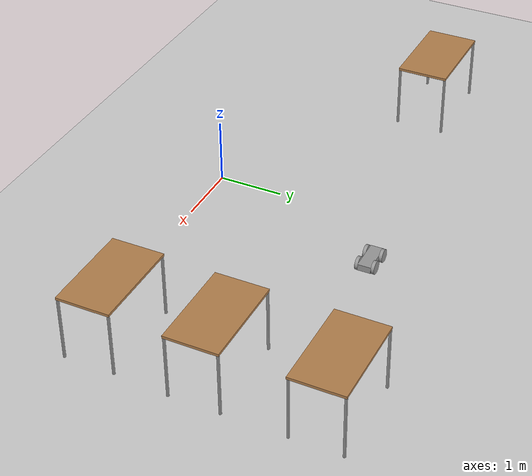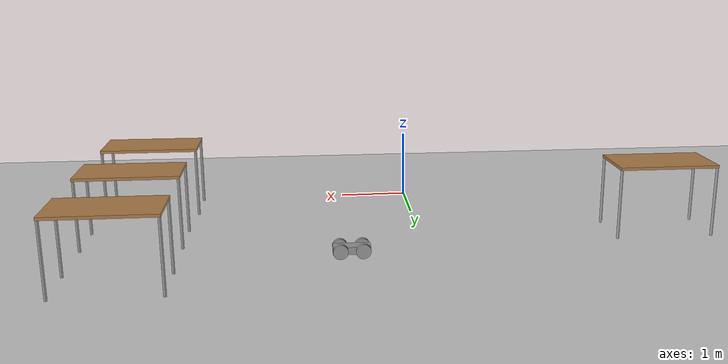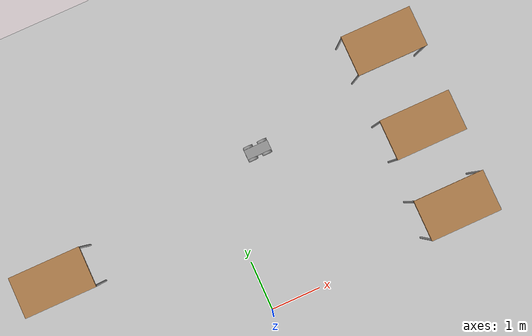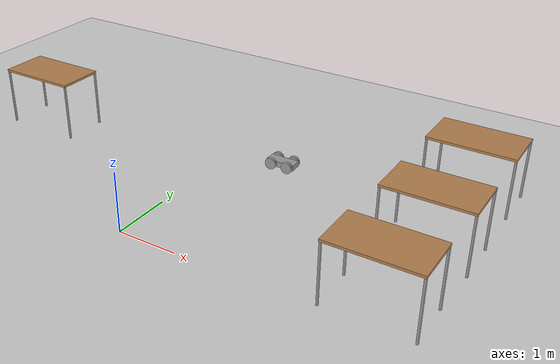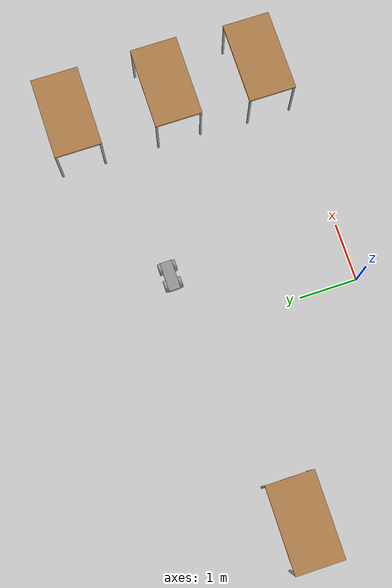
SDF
<sdf version="1.6">
 <world name="default">
  <model name="ground_plane">
   <static>1</static>
   <link name="link">
    <collision name="collision">
     <geometry><plane><normal>0 0 1</normal><size>100 100</size></plane></geometry>
     <surface><friction><ode><mu>100</mu><mu2>50</mu2></ode></friction></surface>
    </collision>
    <visual name="visual">
     <cast_shadows>0</cast_shadows>
     <geometry><plane><normal>0 0 1</normal><size>100 100</size></plane></geometry>
     <material>
      <script><uri>file://media/materials/scripts/gazebo.material</uri><name>Gazebo/Grey</name></script>
     </material>
    </visual>
   </link>
  </model>
  <model name="table">
   <static>0</static>
   <link name="link">
    <collision name="surface">
     <pose>0 0 1 0 -0 0</pose>
     <geometry><box><size>1.5 0.8 0.03</size></box></geometry>
     <surface><friction><ode><mu>0.6</mu><mu2>0.6</mu2></ode></friction></surface>
    </collision>
    <visual name="visual1">
     <pose>0 0 1 0 -0 0</pose>
     <geometry><box><size>1.4 0.8 0.04</size></box></geometry>
     <material>
      <script><uri>file://media/materials/scripts/gazebo.material</uri><name>Gazebo/Wood</name></script>
     </material>
    </visual>
    <collision name="front_left_leg">
     <pose>0.68 0.38 0.5 0 -0 0</pose>
     <geometry><cylinder><radius>0.02</radius><length>1</length></cylinder></geometry>
    </collision>
    <visual name="front_left_leg">
     <pose>0.68 0.38 0.5 0 -0 0</pose>
     <geometry><cylinder><radius>0.02</radius><length>1</length></cylinder></geometry>
     <material>
      <script><uri>file://media/materials/scripts/gazebo.material</uri><name>Gazebo/Grey</name></script>
     </material>
    </visual>
    <collision name="front_right_leg">
     <pose>0.68 -0.38 0.5 0 -0 0</pose>
     <geometry><cylinder><radius>0.02</radius><length>1</length></cylinder></geometry>
    </collision>
    <visual name="front_right_leg">
     <pose>0.68 -0.38 0.5 0 -0 0</pose>
     <geometry><cylinder><radius>0.02</radius><length>1</length></cylinder></geometry>
     <material>
      <script><uri>file://media/materials/scripts/gazebo.material</uri><name>Gazebo/Grey</name></script>
     </material>
    </visual>
    <collision name="back_right_leg">
     <pose>-0.68 -0.38 0.5 0 -0 0</pose>
     <geometry><cylinder><radius>0.02</radius><length>1</length></cylinder></geometry>
    </collision>
    <visual name="back_right_leg">
     <pose>-0.68 -0.38 0.5 0 -0 0</pose>
     <geometry><cylinder><radius>0.02</radius><length>1</length></cylinder></geometry>
     <material>
      <script><uri>file://media/materials/scripts/gazebo.material</uri><name>Gazebo/Grey</name></script>
     </material>
    </visual>
    <collision name="back_left_leg">
     <pose>-0.68 0.38 0.5 0 -0 0</pose>
     <geometry><cylinder><radius>0.02</radius><length>1</length></cylinder></geometry>
    </collision>
    <visual name="back_left_leg">
     <pose>-0.68 0.38 0.5 0 -0 0</pose>
     <geometry><cylinder><radius>0.02</radius><length>1</length></cylinder></geometry>
     <material>
      <script><uri>file://media/materials/scripts/gazebo.material</uri><name>Gazebo/Grey</name></script>
     </material>
    </visual>
    <inertial>
     <inertia><ixx>1</ixx><ixy>0</ixy><ixz>0</ixz><iyy>1</iyy><iyz>0</iyz><izz>1</izz></inertia>
     <mass>1</mass>
    </inertial>
   </link>
   <pose>3.95275 3.76736 -8e-06 0 -2e-06 0</pose>
  </model>
  <model name="table_clone">
   <static>0</static>
   <link name="link">
    <collision name="surface">
     <pose>0 0 1 0 -0 0</pose>
     <geometry><box><size>1.5 0.8 0.03</size></box></geometry>
     <surface><friction><ode><mu>0.6</mu><mu2>0.6</mu2></ode></friction></surface>
    </collision>
    <visual name="visual1">
     <pose>0 0 1 0 -0 0</pose>
     <geometry><box><size>1.4 0.8 0.04</size></box></geometry>
     <material>
      <script><uri>file://media/materials/scripts/gazebo.material</uri><name>Gazebo/Wood</name></script>
     </material>
    </visual>
    <collision name="front_left_leg">
     <pose>0.68 0.38 0.5 0 -0 0</pose>
     <geometry><cylinder><radius>0.02</radius><length>1</length></cylinder></geometry>
    </collision>
    <visual name="front_left_leg">
     <pose>0.68 0.38 0.5 0 -0 0</pose>
     <geometry><cylinder><radius>0.02</radius><length>1</length></cylinder></geometry>
     <material>
      <script><uri>file://media/materials/scripts/gazebo.material</uri><name>Gazebo/Grey</name></script>
     </material>
    </visual>
    <collision name="front_right_leg">
     <pose>0.68 -0.38 0.5 0 -0 0</pose>
     <geometry><cylinder><radius>0.02</radius><length>1</length></cylinder></geometry>
    </collision>
    <visual name="front_right_leg">
     <pose>0.68 -0.38 0.5 0 -0 0</pose>
     <geometry><cylinder><radius>0.02</radius><length>1</length></cylinder></geometry>
     <material>
      <script><uri>file://media/materials/scripts/gazebo.material</uri><name>Gazebo/Grey</name></script>
     </material>
    </visual>
    <collision name="back_right_leg">
     <pose>-0.68 -0.38 0.5 0 -0 0</pose>
     <geometry><cylinder><radius>0.02</radius><length>1</length></cylinder></geometry>
    </collision>
    <visual name="back_right_leg">
     <pose>-0.68 -0.38 0.5 0 -0 0</pose>
     <geometry><cylinder><radius>0.02</radius><length>1</length></cylinder></geometry>
     <material>
      <script><uri>file://media/materials/scripts/gazebo.material</uri><name>Gazebo/Grey</name></script>
     </material>
    </visual>
    <collision name="back_left_leg">
     <pose>-0.68 0.38 0.5 0 -0 0</pose>
     <geometry><cylinder><radius>0.02</radius><length>1</length></cylinder></geometry>
    </collision>
    <visual name="back_left_leg">
     <pose>-0.68 0.38 0.5 0 -0 0</pose>
     <geometry><cylinder><radius>0.02</radius><length>1</length></cylinder></geometry>
     <material>
      <script><uri>file://media/materials/scripts/gazebo.material</uri><name>Gazebo/Grey</name></script>
     </material>
    </visual>
    <inertial>
     <inertia><ixx>1</ixx><ixy>0</ixy><ixz>0</ixz><iyy>1</iyy><iyz>0</iyz><izz>1</izz></inertia>
     <mass>1</mass>
    </inertial>
   </link>
   <pose>3.95122 2.05572 -1e-06 0 1e-06 0</pose>
  </model>
  <model name="table_clone_0">
   <static>0</static>
   <link name="link">
    <collision name="surface">
     <pose>0 0 1 0 -0 0</pose>
     <geometry><box><size>1.5 0.8 0.03</size></box></geometry>
     <surface><friction><ode><mu>0.6</mu><mu2>0.6</mu2></ode></friction></surface>
    </collision>
    <visual name="visual1">
     <pose>0 0 1 0 -0 0</pose>
     <geometry><box><size>1.4 0.8 0.04</size></box></geometry>
     <material>
      <script><uri>file://media/materials/scripts/gazebo.material</uri><name>Gazebo/Wood</name></script>
     </material>
    </visual>
    <collision name="front_left_leg">
     <pose>0.68 0.38 0.5 0 -0 0</pose>
     <geometry><cylinder><radius>0.02</radius><length>1</length></cylinder></geometry>
    </collision>
    <visual name="front_left_leg">
     <pose>0.68 0.38 0.5 0 -0 0</pose>
     <geometry><cylinder><radius>0.02</radius><length>1</length></cylinder></geometry>
     <material>
      <script><uri>file://media/materials/scripts/gazebo.material</uri><name>Gazebo/Grey</name></script>
     </material>
    </visual>
    <collision name="front_right_leg">
     <pose>0.68 -0.38 0.5 0 -0 0</pose>
     <geometry><cylinder><radius>0.02</radius><length>1</length></cylinder></geometry>
    </collision>
    <visual name="front_right_leg">
     <pose>0.68 -0.38 0.5 0 -0 0</pose>
     <geometry><cylinder><radius>0.02</radius><length>1</length></cylinder></geometry>
     <material>
      <script><uri>file://media/materials/scripts/gazebo.material</uri><name>Gazebo/Grey</name></script>
     </material>
    </visual>
    <collision name="back_right_leg">
     <pose>-0.68 -0.38 0.5 0 -0 0</pose>
     <geometry><cylinder><radius>0.02</radius><length>1</length></cylinder></geometry>
    </collision>
    <visual name="back_right_leg">
     <pose>-0.68 -0.38 0.5 0 -0 0</pose>
     <geometry><cylinder><radius>0.02</radius><length>1</length></cylinder></geometry>
     <material>
      <script><uri>file://media/materials/scripts/gazebo.material</uri><name>Gazebo/Grey</name></script>
     </material>
    </visual>
    <collision name="back_left_leg">
     <pose>-0.68 0.38 0.5 0 -0 0</pose>
     <geometry><cylinder><radius>0.02</radius><length>1</length></cylinder></geometry>
    </collision>
    <visual name="back_left_leg">
     <pose>-0.68 0.38 0.5 0 -0 0</pose>
     <geometry><cylinder><radius>0.02</radius><length>1</length></cylinder></geometry>
     <material>
      <script><uri>file://media/materials/scripts/gazebo.material</uri><name>Gazebo/Grey</name></script>
     </material>
    </visual>
    <inertial>
     <inertia><ixx>1</ixx><ixy>0</ixy><ixz>0</ixz><iyy>1</iyy><iyz>0</iyz><izz>1</izz></inertia>
     <mass>1</mass>
    </inertial>
   </link>
   <pose>3.89737 0.456338 -1e-06 1e-06 1e-06 0</pose>
  </model>
  <model name="table_clone_0_clone">
   <static>0</static>
   <link name="link">
    <collision name="surface">
     <pose>0 0 1 0 -0 0</pose>
     <geometry><box><size>1.5 0.8 0.03</size></box></geometry>
     <surface><friction><ode><mu>0.6</mu><mu2>0.6</mu2></ode></friction></surface>
    </collision>
    <visual name="visual1">
     <pose>0 0 1 0 -0 0</pose>
     <geometry><box><size>1.4 0.8 0.04</size></box></geometry>
     <material>
      <script><uri>file://media/materials/scripts/gazebo.material</uri><name>Gazebo/Wood</name></script>
     </material>
    </visual>
    <collision name="front_left_leg">
     <pose>0.68 0.38 0.5 0 -0 0</pose>
     <geometry><cylinder><radius>0.02</radius><length>1</length></cylinder></geometry>
    </collision>
    <visual name="front_left_leg">
     <pose>0.68 0.38 0.5 0 -0 0</pose>
     <geometry><cylinder><radius>0.02</radius><length>1</length></cylinder></geometry>
     <material>
      <script><uri>file://media/materials/scripts/gazebo.material</uri><name>Gazebo/Grey</name></script>
     </material>
    </visual>
    <collision name="front_right_leg">
     <pose>0.68 -0.38 0.5 0 -0 0</pose>
     <geometry><cylinder><radius>0.02</radius><length>1</length></cylinder></geometry>
    </collision>
    <visual name="front_right_leg">
     <pose>0.68 -0.38 0.5 0 -0 0</pose>
     <geometry><cylinder><radius>0.02</radius><length>1</length></cylinder></geometry>
     <material>
      <script><uri>file://media/materials/scripts/gazebo.material</uri><name>Gazebo/Grey</name></script>
     </material>
    </visual>
    <collision name="back_right_leg">
     <pose>-0.68 -0.38 0.5 0 -0 0</pose>
     <geometry><cylinder><radius>0.02</radius><length>1</length></cylinder></geometry>
    </collision>
    <visual name="back_right_leg">
     <pose>-0.68 -0.38 0.5 0 -0 0</pose>
     <geometry><cylinder><radius>0.02</radius><length>1</length></cylinder></geometry>
     <material>
      <script><uri>file://media/materials/scripts/gazebo.material</uri><name>Gazebo/Grey</name></script>
     </material>
    </visual>
    <collision name="back_left_leg">
     <pose>-0.68 0.38 0.5 0 -0 0</pose>
     <geometry><cylinder><radius>0.02</radius><length>1</length></cylinder></geometry>
    </collision>
    <visual name="back_left_leg">
     <pose>-0.68 0.38 0.5 0 -0 0</pose>
     <geometry><cylinder><radius>0.02</radius><length>1</length></cylinder></geometry>
     <material>
      <script><uri>file://media/materials/scripts/gazebo.material</uri><name>Gazebo/Grey</name></script>
     </material>
    </visual>
    <inertial>
     <inertia><ixx>1</ixx><ixy>0</ixy><ixz>0</ixz><iyy>1</iyy><iyz>0</iyz><izz>1</izz></inertia>
     <mass>1</mass>
    </inertial>
   </link>
   <pose>-3.41119 2.22662 -1e-06 1e-06 -0 0</pose>
  </model>
  <model name="4wheel_small">
   <link name="link_0">
    <inertial>
     <mass>0.161541</mass>
     <inertia>
      <ixx>0.00544895</ixx>
      <ixy>0</ixy>
      <ixz>0</ixz>
      <iyy>0.014545</iyy>
      <iyz>0</iyz>
      <izz>0.0178275</izz>
     </inertia>
    </inertial>
    <visual name="visual">
     <geometry><box><size>0.5 0.2 0.1</size></box></geometry>
     <material>
      <lighting>1</lighting>
      <script><uri>file://media/materials/scripts/gazebo.material</uri><name>Gazebo/Grey</name></script>
      <ambient>0.3 0.3 0.3 1</ambient>
      <diffuse>0.7 0.7 0.7 1</diffuse>
      <specular>0.01 0.01 0.01 1</specular>
      <emissive>0 0 0 1</emissive>
      <shader type="vertex"><normal_map>__default__</normal_map></shader>
     </material>
    </visual>
    <collision name="collision">
     <geometry><box><size>0.5 0.2 0.1</size></box></geometry>
     <surface>
      <friction>
       <ode><mu>1</mu><mu2>1</mu2><fdir1>0 0 0</fdir1><slip1>0</slip1><slip2>0</slip2></ode>
       <torsional>
        <coefficient>1</coefficient>
        <patch_radius>0</patch_radius>
        <surface_radius>0</surface_radius>
        <use_patch_radius>1</use_patch_radius>
        <ode><slip>0</slip></ode>
       </torsional>
      </friction>
      <bounce><restitution_coefficient>0</restitution_coefficient><threshold>1e+06</threshold></bounce>
      <contact>
       <collide_without_contact>0</collide_without_contact>
       <collide_without_contact_bitmask>1</collide_without_contact_bitmask>
       <collide_bitmask>1</collide_bitmask>
       <ode>
        <soft_cfm>0</soft_cfm>
        <soft_erp>0.2</soft_erp>
        <kp>1e+13</kp>
        <kd>1</kd>
        <max_vel>0.01</max_vel>
        <min_depth>0</min_depth>
       </ode>
       <bullet>
        <split_impulse>1</split_impulse>
        <split_impulse_penetration_threshold>-0.01</split_impulse_penetration_threshold>
        <soft_cfm>0</soft_cfm>
        <soft_erp>0.2</soft_erp>
        <kp>1e+13</kp>
        <kd>1</kd>
       </bullet>
      </contact>
     </surface>
    </collision>
   </link>
   <link name="link_1">
    <pose>0.15 -0.12501 0 1.5707 -0 0</pose>
    <inertial>
     <mass>1</mass>
     <inertia><ixx>0.145833</ixx><ixy>0</ixy><ixz>0</ixz><iyy>0.145833</iyy><iyz>0</iyz><izz>0.125</izz></inertia>
    </inertial>
    <visual name="visual">
     <geometry><cylinder><radius>0.1</radius><length>0.05</length></cylinder></geometry>
     <material>
      <lighting>1</lighting>
      <script><uri>file://media/materials/scripts/gazebo.material</uri><name>Gazebo/Grey</name></script>
      <ambient>0.3 0.3 0.3 1</ambient>
      <diffuse>0.7 0.7 0.7 1</diffuse>
      <specular>0.01 0.01 0.01 1</specular>
      <emissive>0 0 0 1</emissive>
      <shader type="vertex"><normal_map>__default__</normal_map></shader>
     </material>
    </visual>
    <collision name="collision">
     <geometry><cylinder><radius>0.1</radius><length>0.05</length></cylinder></geometry>
     <surface>
      <friction>
       <ode><mu>1</mu><mu2>1</mu2><fdir1>0 0 0</fdir1><slip1>0</slip1><slip2>0</slip2></ode>
       <torsional>
        <coefficient>1</coefficient>
        <patch_radius>0</patch_radius>
        <surface_radius>0</surface_radius>
        <use_patch_radius>1</use_patch_radius>
        <ode><slip>0</slip></ode>
       </torsional>
      </friction>
      <bounce><restitution_coefficient>0</restitution_coefficient><threshold>1e+06</threshold></bounce>
      <contact>
       <collide_without_contact>0</collide_without_contact>
       <collide_without_contact_bitmask>1</collide_without_contact_bitmask>
       <collide_bitmask>1</collide_bitmask>
       <ode>
        <soft_cfm>0</soft_cfm>
        <soft_erp>0.2</soft_erp>
        <kp>1e+13</kp>
        <kd>1</kd>
        <max_vel>0.01</max_vel>
        <min_depth>0</min_depth>
       </ode>
       <bullet>
        <split_impulse>1</split_impulse>
        <split_impulse_penetration_threshold>-0.01</split_impulse_penetration_threshold>
        <soft_cfm>0</soft_cfm>
        <soft_erp>0.2</soft_erp>
        <kp>1e+13</kp>
        <kd>1</kd>
       </bullet>
      </contact>
     </surface>
    </collision>
   </link>
   <link name="link_1_clone">
    <pose>0.15 0.12501 0 1.5707 -0 0</pose>
    <inertial>
     <mass>1</mass>
     <inertia><ixx>0.145833</ixx><ixy>0</ixy><ixz>0</ixz><iyy>0.145833</iyy><iyz>0</iyz><izz>0.125</izz></inertia>
    </inertial>
    <visual name="visual">
     <geometry><cylinder><radius>0.1</radius><length>0.05</length></cylinder></geometry>
     <material>
      <lighting>1</lighting>
      <script><uri>file://media/materials/scripts/gazebo.material</uri><name>Gazebo/Grey</name></script>
      <ambient>0.3 0.3 0.3 1</ambient>
      <diffuse>0.7 0.7 0.7 1</diffuse>
      <specular>0.01 0.01 0.01 1</specular>
      <emissive>0 0 0 1</emissive>
      <shader type="vertex"><normal_map>__default__</normal_map></shader>
     </material>
    </visual>
    <collision name="collision">
     <geometry><cylinder><radius>0.1</radius><length>0.05</length></cylinder></geometry>
     <surface>
      <friction>
       <ode><mu>1</mu><mu2>1</mu2><fdir1>0 0 0</fdir1><slip1>0</slip1><slip2>0</slip2></ode>
       <torsional>
        <coefficient>1</coefficient>
        <patch_radius>0</patch_radius>
        <surface_radius>0</surface_radius>
        <use_patch_radius>1</use_patch_radius>
        <ode><slip>0</slip></ode>
       </torsional>
      </friction>
      <bounce><restitution_coefficient>0</restitution_coefficient><threshold>1e+06</threshold></bounce>
      <contact>
       <collide_without_contact>0</collide_without_contact>
       <collide_without_contact_bitmask>1</collide_without_contact_bitmask>
       <collide_bitmask>1</collide_bitmask>
       <ode>
        <soft_cfm>0</soft_cfm>
        <soft_erp>0.2</soft_erp>
        <kp>1e+13</kp>
        <kd>1</kd>
        <max_vel>0.01</max_vel>
        <min_depth>0</min_depth>
       </ode>
       <bullet>
        <split_impulse>1</split_impulse>
        <split_impulse_penetration_threshold>-0.01</split_impulse_penetration_threshold>
        <soft_cfm>0</soft_cfm>
        <soft_erp>0.2</soft_erp>
        <kp>1e+13</kp>
        <kd>1</kd>
       </bullet>
      </contact>
     </surface>
    </collision>
   </link>
   <link name="link_1_clone_clone">
    <pose>-0.15 0.12501 0 1.5707 -0 0</pose>
    <inertial>
     <mass>1</mass>
     <inertia><ixx>0.145833</ixx><ixy>0</ixy><ixz>0</ixz><iyy>0.145833</iyy><iyz>0</iyz><izz>0.125</izz></inertia>
    </inertial>
    <visual name="visual">
     <geometry><cylinder><radius>0.1</radius><length>0.05</length></cylinder></geometry>
     <material>
      <lighting>1</lighting>
      <script><uri>file://media/materials/scripts/gazebo.material</uri><name>Gazebo/Grey</name></script>
      <ambient>0.3 0.3 0.3 1</ambient>
      <diffuse>0.7 0.7 0.7 1</diffuse>
      <specular>0.01 0.01 0.01 1</specular>
      <emissive>0 0 0 1</emissive>
      <shader type="vertex"><normal_map>__default__</normal_map></shader>
     </material>
    </visual>
    <collision name="collision">
     <geometry><cylinder><radius>0.1</radius><length>0.05</length></cylinder></geometry>
     <surface>
      <friction>
       <ode><mu>1</mu><mu2>1</mu2><fdir1>0 0 0</fdir1><slip1>0</slip1><slip2>0</slip2></ode>
       <torsional>
        <coefficient>1</coefficient>
        <patch_radius>0</patch_radius>
        <surface_radius>0</surface_radius>
        <use_patch_radius>1</use_patch_radius>
        <ode><slip>0</slip></ode>
       </torsional>
      </friction>
      <bounce><restitution_coefficient>0</restitution_coefficient><threshold>1e+06</threshold></bounce>
      <contact>
       <collide_without_contact>0</collide_without_contact>
       <collide_without_contact_bitmask>1</collide_without_contact_bitmask>
       <collide_bitmask>1</collide_bitmask>
       <ode>
        <soft_cfm>0</soft_cfm>
        <soft_erp>0.2</soft_erp>
        <kp>1e+13</kp>
        <kd>1</kd>
        <max_vel>0.01</max_vel>
        <min_depth>0</min_depth>
       </ode>
       <bullet>
        <split_impulse>1</split_impulse>
        <split_impulse_penetration_threshold>-0.01</split_impulse_penetration_threshold>
        <soft_cfm>0</soft_cfm>
        <soft_erp>0.2</soft_erp>
        <kp>1e+13</kp>
        <kd>1</kd>
       </bullet>
      </contact>
     </surface>
    </collision>
   </link>
   <link name="link_1_clone_clone_clone">
    <pose>-0.15 -0.12501 0 1.5707 -0 0</pose>
    <inertial>
     <mass>1</mass>
     <inertia><ixx>0.145833</ixx><ixy>0</ixy><ixz>0</ixz><iyy>0.145833</iyy><iyz>0</iyz><izz>0.125</izz></inertia>
    </inertial>
    <visual name="visual">
     <geometry><cylinder><radius>0.1</radius><length>0.05</length></cylinder></geometry>
     <material>
      <lighting>1</lighting>
      <script><uri>file://media/materials/scripts/gazebo.material</uri><name>Gazebo/Grey</name></script>
      <ambient>0.3 0.3 0.3 1</ambient>
      <diffuse>0.7 0.7 0.7 1</diffuse>
      <specular>0.01 0.01 0.01 1</specular>
      <emissive>0 0 0 1</emissive>
      <shader type="vertex"><normal_map>__default__</normal_map></shader>
     </material>
    </visual>
    <collision name="collision">
     <geometry><cylinder><radius>0.1</radius><length>0.05</length></cylinder></geometry>
     <surface>
      <friction>
       <ode><mu>1</mu><mu2>1</mu2><fdir1>0 0 0</fdir1><slip1>0</slip1><slip2>0</slip2></ode>
       <torsional>
        <coefficient>1</coefficient>
        <patch_radius>0</patch_radius>
        <surface_radius>0</surface_radius>
        <use_patch_radius>1</use_patch_radius>
        <ode><slip>0</slip></ode>
       </torsional>
      </friction>
      <bounce><restitution_coefficient>0</restitution_coefficient><threshold>1e+06</threshold></bounce>
      <contact>
       <collide_without_contact>0</collide_without_contact>
       <collide_without_contact_bitmask>1</collide_without_contact_bitmask>
       <collide_bitmask>1</collide_bitmask>
       <ode>
        <soft_cfm>0</soft_cfm>
        <soft_erp>0.2</soft_erp>
        <kp>1e+13</kp>
        <kd>1</kd>
        <max_vel>0.01</max_vel>
        <min_depth>0</min_depth>
       </ode>
       <bullet>
        <split_impulse>1</split_impulse>
        <split_impulse_penetration_threshold>-0.01</split_impulse_penetration_threshold>
        <soft_cfm>0</soft_cfm>
        <soft_erp>0.2</soft_erp>
        <kp>1e+13</kp>
        <kd>1</kd>
       </bullet>
      </contact>
     </surface>
    </collision>
   </link>
   <joint name="link_0_JOINT_0" type="revolute">
    <parent>link_0</parent>
    <child>link_1</child>
    <axis>
     <xyz>0 0 1</xyz>
     <use_parent_model_frame>0</use_parent_model_frame>
     <limit>
      <lower>-1.79769e+308</lower>
      <upper>1.79769e+308</upper>
      <effort>-1</effort>
      <velocity>-1</velocity>
     </limit>
     <dynamics>
      <spring_reference>0</spring_reference>
      <spring_stiffness>0</spring_stiffness>
      <damping>0</damping>
     </dynamics>
    </axis>
    <physics>
     <ode><limit><cfm>0</cfm><erp>0.2</erp></limit><suspension><cfm>0</cfm><erp>0.2</erp></suspension></ode>
    </physics>
   </joint>
   <joint name="link_0_JOINT_1" type="revolute">
    <parent>link_0</parent>
    <child>link_1_clone</child>
    <axis>
     <xyz>0 0 1</xyz>
     <use_parent_model_frame>0</use_parent_model_frame>
     <limit>
      <lower>-1.79769e+308</lower>
      <upper>1.79769e+308</upper>
      <effort>-1</effort>
      <velocity>-1</velocity>
     </limit>
     <dynamics>
      <spring_reference>0</spring_reference>
      <spring_stiffness>0</spring_stiffness>
      <damping>0</damping>
     </dynamics>
    </axis>
    <physics>
     <ode><limit><cfm>0</cfm><erp>0.2</erp></limit><suspension><cfm>0</cfm><erp>0.2</erp></suspension></ode>
    </physics>
   </joint>
   <joint name="link_0_JOINT_2" type="revolute">
    <parent>link_0</parent>
    <child>link_1_clone_clone</child>
    <axis>
     <xyz>0 0 1</xyz>
     <use_parent_model_frame>0</use_parent_model_frame>
     <limit>
      <lower>-1.79769e+308</lower>
      <upper>1.79769e+308</upper>
      <effort>-1</effort>
      <velocity>-1</velocity>
     </limit>
     <dynamics>
      <spring_reference>0</spring_reference>
      <spring_stiffness>0</spring_stiffness>
      <damping>0</damping>
     </dynamics>
    </axis>
    <physics>
     <ode><limit><cfm>0</cfm><erp>0.2</erp></limit><suspension><cfm>0</cfm><erp>0.2</erp></suspension></ode>
    </physics>
   </joint>
   <joint name="link_0_JOINT_3" type="revolute">
    <parent>link_0</parent>
    <child>link_1_clone_clone_clone</child>
    <axis>
     <xyz>0 0 1</xyz>
     <use_parent_model_frame>0</use_parent_model_frame>
     <limit>
      <lower>-1.79769e+308</lower>
      <upper>1.79769e+308</upper>
      <effort>-1</effort>
      <velocity>-1</velocity>
     </limit>
     <dynamics>
      <spring_reference>0</spring_reference>
      <spring_stiffness>0</spring_stiffness>
      <damping>0</damping>
     </dynamics>
    </axis>
    <physics>
     <ode><limit><cfm>0</cfm><erp>0.2</erp></limit><suspension><cfm>0</cfm><erp>0.2</erp></suspension></ode>
    </physics>
   </joint>
   <static>0</static>
   <pose>1.01353 2.94742 0.099998 3e-06 2.6e-05 0.010844</pose>
  </model>
 </world>
</sdf>
